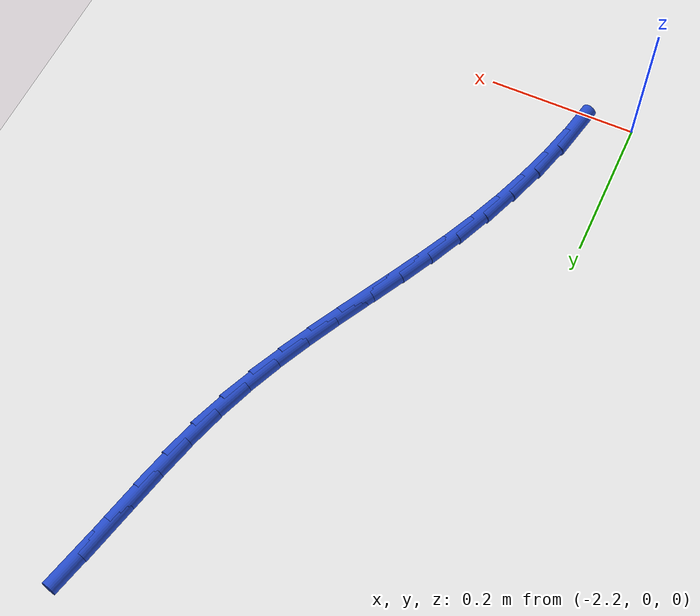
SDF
<sdf version="1.6">
 <world name="default">
  <model name="ground_plane">
   <static>1</static>
   <link name="link">
    <collision name="collision">
     <geometry><plane><normal>0 0 1</normal><size>100 100</size></plane></geometry>
     <surface><friction><ode><mu>100</mu><mu2>50</mu2></ode></friction></surface>
    </collision>
    <visual name="visual">
     <cast_shadows>0</cast_shadows>
     <geometry><plane><normal>0 0 1</normal><size>100 100</size></plane></geometry>
     <material>
      <script><uri>file://media/materials/scripts/gazebo.material</uri><name>Gazebo/WhiteGlow</name></script>
     </material>
    </visual>
   </link>
  </model>
  <model name="line">
   <link name="link_56">
    <pose>-1.8208578216448532 0.8334312535614155 0.01 0 1.57 1.318632390605863</pose>
    <collision name="collision">
     <geometry><cylinder><radius>0.01</radius><length>0.08</length></cylinder></geometry>
    </collision>
    <visual name="visual">
     <material>
      <script><name>Gazebo/Blue</name><uri>file://media/materials/scripts/gazebo.material</uri></script>
     </material>
     <geometry><cylinder><radius>0.01</radius><length>0.08</length></cylinder></geometry>
    </visual>
   </link>
   <link name="link_57">
    <pose>-1.833223124387041 0.7854382862381437 0.01 0 1.57 1.333246167731175</pose>
    <collision name="collision">
     <geometry><cylinder><radius>0.01</radius><length>0.08</length></cylinder></geometry>
    </collision>
    <visual name="visual">
     <material>
      <script><name>Gazebo/Blue</name><uri>file://media/materials/scripts/gazebo.material</uri></script>
     </material>
     <geometry><cylinder><radius>0.01</radius><length>0.08</length></cylinder></geometry>
    </visual>
   </link>
   <link name="link_58">
    <pose>-1.8450878120217507 0.7364352947276149 0.01 0 1.57 1.3293388330928213</pose>
    <collision name="collision">
     <geometry><cylinder><radius>0.01</radius><length>0.08</length></cylinder></geometry>
    </collision>
    <visual name="visual">
     <material>
      <script><name>Gazebo/Blue</name><uri>file://media/materials/scripts/gazebo.material</uri></script>
     </material>
     <geometry><cylinder><radius>0.01</radius><length>0.08</length></cylinder></geometry>
    </visual>
   </link>
   <link name="link_59">
    <pose>-1.857181520409264 0.6873261882092875 0.01 0 1.57 1.306924164472384</pose>
    <collision name="collision">
     <geometry><cylinder><radius>0.01</radius><length>0.08</length></cylinder></geometry>
    </collision>
    <visual name="visual">
     <material>
      <script><name>Gazebo/Blue</name><uri>file://media/materials/scripts/gazebo.material</uri></script>
     </material>
     <geometry><cylinder><radius>0.01</radius><length>0.08</length></cylinder></geometry>
    </visual>
   </link>
   <link name="link_60">
    <pose>-1.870233885409863 0.639014875862619 0.01 0 1.57 1.264588774454825</pose>
    <collision name="collision">
     <geometry><cylinder><radius>0.01</radius><length>0.08</length></cylinder></geometry>
    </collision>
    <visual name="visual">
     <material>
      <script><name>Gazebo/Blue</name><uri>file://media/materials/scripts/gazebo.material</uri></script>
     </material>
     <geometry><cylinder><radius>0.01</radius><length>0.08</length></cylinder></geometry>
    </visual>
   </link>
   <link name="link_61">
    <pose>-1.884970935100629 0.592400912514437 0.01 0 1.57 1.20984001735704</pose>
    <collision name="collision">
     <geometry><cylinder><radius>0.01</radius><length>0.08</length></cylinder></geometry>
    </collision>
    <visual name="visual">
     <material>
      <script><name>Gazebo/Blue</name><uri>file://media/materials/scripts/gazebo.material</uri></script>
     </material>
     <geometry><cylinder><radius>0.01</radius><length>0.08</length></cylinder></geometry>
    </visual>
   </link>
   <link name="link_62">
    <pose>-1.9017535309242093 0.54794312132722 0.01 0 1.57 1.161276306738726</pose>
    <collision name="collision">
     <geometry><cylinder><radius>0.01</radius><length>0.08</length></cylinder></geometry>
    </collision>
    <visual name="visual">
     <material>
      <script><name>Gazebo/Blue</name><uri>file://media/materials/scripts/gazebo.material</uri></script>
     </material>
     <geometry><cylinder><radius>0.01</radius><length>0.08</length></cylinder></geometry>
    </visual>
   </link>
   <link name="link_63">
    <pose>-1.9202688003023838 0.5052871736353618 0.01 0 1.57 1.1224846416783973</pose>
    <collision name="collision">
     <geometry><cylinder><radius>0.01</radius><length>0.08</length></cylinder></geometry>
    </collision>
    <visual name="visual">
     <material>
      <script><name>Gazebo/Blue</name><uri>file://media/materials/scripts/gazebo.material</uri></script>
     </material>
     <geometry><cylinder><radius>0.01</radius><length>0.08</length></cylinder></geometry>
    </visual>
   </link>
   <link name="link_64">
    <pose>-1.940131194246929 0.4639910252151494 0.01 0 1.57 1.094651472980846</pose>
    <collision name="collision">
     <geometry><cylinder><radius>0.01</radius><length>0.08</length></cylinder></geometry>
    </collision>
    <visual name="visual">
     <material>
      <script><name>Gazebo/Blue</name><uri>file://media/materials/scripts/gazebo.material</uri></script>
     </material>
     <geometry><cylinder><radius>0.01</radius><length>0.08</length></cylinder></geometry>
    </visual>
   </link>
   <link name="link_65">
    <pose>-1.9609551637696188 0.4236126318428695 0.01 0 1.57 1.078528509126694</pose>
    <collision name="collision">
     <geometry><cylinder><radius>0.01</radius><length>0.08</length></cylinder></geometry>
    </collision>
    <visual name="visual">
     <material>
      <script><name>Gazebo/Blue</name><uri>file://media/materials/scripts/gazebo.material</uri></script>
     </material>
     <geometry><cylinder><radius>0.01</radius><length>0.08</length></cylinder></geometry>
    </visual>
   </link>
   <link name="link_66">
    <pose>-1.9823551598822284 0.38370994929480917 0.01 0 1.57 1.0744752581298518</pose>
    <collision name="collision">
     <geometry><cylinder><radius>0.01</radius><length>0.08</length></cylinder></geometry>
    </collision>
    <visual name="visual">
     <material>
      <script><name>Gazebo/Blue</name><uri>file://media/materials/scripts/gazebo.material</uri></script>
     </material>
     <geometry><cylinder><radius>0.01</radius><length>0.08</length></cylinder></geometry>
    </visual>
   </link>
   <link name="link_67">
    <pose>-2.0039456335965324 0.343840933347255 0.01 0 1.57 1.0825003863119556</pose>
    <collision name="collision">
     <geometry><cylinder><radius>0.01</radius><length>0.08</length></cylinder></geometry>
    </collision>
    <visual name="visual">
     <material>
      <script><name>Gazebo/Blue</name><uri>file://media/materials/scripts/gazebo.material</uri></script>
     </material>
     <geometry><cylinder><radius>0.01</radius><length>0.08</length></cylinder></geometry>
    </visual>
   </link>
   <link name="link_68">
    <pose>-2.025341035924305 0.30356353977649464 0.01 0 1.57 1.102280739569995</pose>
    <collision name="collision">
     <geometry><cylinder><radius>0.01</radius><length>0.08</length></cylinder></geometry>
    </collision>
    <visual name="visual">
     <material>
      <script><name>Gazebo/Blue</name><uri>file://media/materials/scripts/gazebo.material</uri></script>
     </material>
     <geometry><cylinder><radius>0.01</radius><length>0.08</length></cylinder></geometry>
    </visual>
   </link>
   <link name="link_69">
    <pose>-2.0461558178773225 0.2624357243588149 0.01 0 1.57 1.1331537219815495</pose>
    <collision name="collision">
     <geometry><cylinder><radius>0.01</radius><length>0.08</length></cylinder></geometry>
    </collision>
    <visual name="visual">
     <material>
      <script><name>Gazebo/Blue</name><uri>file://media/materials/scripts/gazebo.material</uri></script>
     </material>
     <geometry><cylinder><radius>0.01</radius><length>0.08</length></cylinder></geometry>
    </visual>
   </link>
   <link name="link_70">
    <pose>-2.0660044304673577 0.22001544287050268 0.01 0 1.57 1.173227146026849</pose>
    <collision name="collision">
     <geometry><cylinder><radius>0.01</radius><length>0.08</length></cylinder></geometry>
    </collision>
    <visual name="visual">
     <material>
      <script><name>Gazebo/Blue</name><uri>file://media/materials/scripts/gazebo.material</uri></script>
     </material>
     <geometry><cylinder><radius>0.01</radius><length>0.08</length></cylinder></geometry>
    </visual>
   </link>
   <link name="link_71">
    <pose>-2.0845113708223955 0.17594403963600624 0.01 0 1.57 1.2166216404447607</pose>
    <collision name="collision">
     <geometry><cylinder><radius>0.01</radius><length>0.08</length></cylinder></geometry>
    </collision>
    <visual name="visual">
     <material>
      <script><name>Gazebo/Blue</name><uri>file://media/materials/scripts/gazebo.material</uri></script>
     </material>
     <geometry><cylinder><radius>0.01</radius><length>0.08</length></cylinder></geometry>
    </visual>
   </link>
   <link name="link_72">
    <pose>-2.101362454178282 0.13037183457639345 0.01 0 1.57 1.262057430843992</pose>
    <collision name="collision">
     <geometry><cylinder><radius>0.01</radius><length>0.08</length></cylinder></geometry>
    </collision>
    <visual name="visual">
     <material>
      <script><name>Gazebo/Blue</name><uri>file://media/materials/scripts/gazebo.material</uri></script>
     </material>
     <geometry><cylinder><radius>0.01</radius><length>0.08</length></cylinder></geometry>
    </visual>
   </link>
   <link name="link_73">
    <pose>-2.1162666263596805 0.08364114481636611 0.01 0 1.57 1.3104456474203467</pose>
    <collision name="collision">
     <geometry><cylinder><radius>0.01</radius><length>0.08</length></cylinder></geometry>
    </collision>
    <visual name="visual">
     <material>
      <script><name>Gazebo/Blue</name><uri>file://media/materials/scripts/gazebo.material</uri></script>
     </material>
     <geometry><cylinder><radius>0.01</radius><length>0.08</length></cylinder></geometry>
    </visual>
   </link>
   <link name="link_74">
    <pose>-2.12893287578692 0.03609464104920041 0.01 0 1.57 1.3627434985737172</pose>
    <collision name="collision">
     <geometry><cylinder><radius>0.01</radius><length>0.08</length></cylinder></geometry>
    </collision>
    <visual name="visual">
     <material>
      <script><name>Gazebo/Blue</name><uri>file://media/materials/scripts/gazebo.material</uri></script>
     </material>
     <geometry><cylinder><radius>0.01</radius><length>0.08</length></cylinder></geometry>
    </visual>
   </link>
  </model>
 </world>
</sdf>
